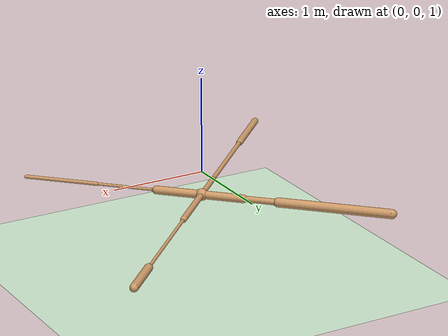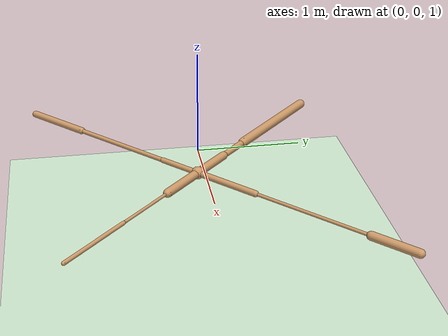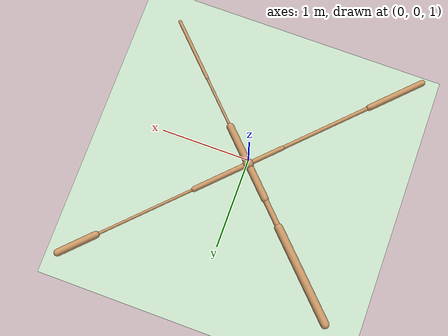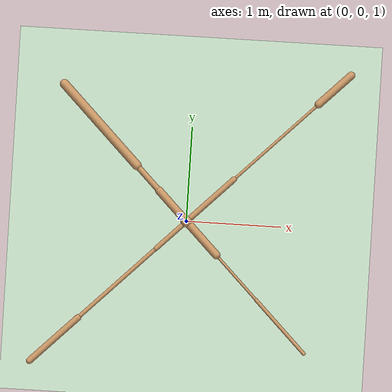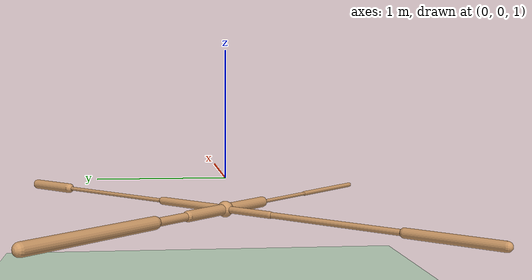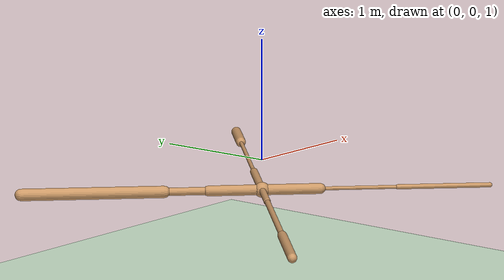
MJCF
<mujoco model="ant">
  <compiler angle="degree" coordinate="local" inertiafromgeom="true" />
  <option integrator="RK4" timestep="0.01" />
  <custom>
    <numeric data="0.0 0.0 0.55 1.0 0.0 0.0 0.0 0.0 1.0 0.0 -1.0 0.0 -1.0 0.0 1.0" name="init_qpos" />
  </custom>
  <default>
    <joint armature="1" damping="1" limited="true" />
    <geom conaffinity="0" condim="3" density="5.0" friction="1 0.5 0.5" margin="0.01" rgba="0.8 0.6 0.4 1" />
  </default>
  <asset>
    <texture builtin="gradient" height="100" rgb1="1 1 1" rgb2="0 0 0" type="skybox" width="100" />
    <texture builtin="flat" height="1278" mark="cross" markrgb="1 1 1" name="texgeom" random="0.01" rgb1="0.8 0.6 0.4" rgb2="0.8 0.6 0.4" type="cube" width="127" />
    <texture builtin="checker" height="100" name="texplane" rgb1="0 0 0" rgb2="0.8 0.8 0.8" type="2d" width="100" />
    <material name="MatPlane" reflectance="0.5" shininess="1" specular="1" texrepeat="60 60" texture="texplane" />
    <material name="geom" texture="texgeom" texuniform="true" />
  </asset>
  <worldbody>
    <light cutoff="100" diffuse="1 1 1" dir="-0 0 -1.3" directional="true" exponent="1" pos="0 0 1.3" specular=".1 .1 .1" />
    <geom conaffinity="1" condim="3" material="MatPlane" name="floor" pos="0 0 0" rgba="0.8 0.9 0.8 1" size="40 40 40" type="plane" />
    <body name="torso" pos="0 0 0.75">
      <camera name="track" mode="trackcom" pos="0 -11 5" xyaxes="1 0 0 0 0.5 1" />
      <geom name="torso_geom" pos="0 0 0" size="0.06372592598199844" type="sphere" />
      <joint armature="0" damping="0" limited="false" margin="0.01" name="root" pos="0 0 0" type="free" />
      <body name="front_left_leg" pos="0 0 0">
        <geom fromto="0 0 0 0.48008978366851807 0.48008978366851807 0" name="aux_1_geom" size="0.03230687230825424" type="capsule" />
        <body name="aux_1" pos="0.48008978366851807 0.48008978366851807 0">
          <joint axis="0 0 1" name="hip_1" pos="0.0 0.0 0.0" range="-30 30" type="hinge" />
          <geom fromto="0 0 0 0.8565163016319275 0.8565163016319275 0" name="left_leg_geom" size="0.016542401164770126" type="capsule" />
          <body name="left_leg_geom_aux" pos="0.8565163016319275 0.8565163016319275 0">
            <joint axis="-1 1 0" name="ankle_1" pos="0.0 0.0 0.0" range="30 70" type="hinge" />
            <geom fromto="0 0 0 0.3276321291923523 0.3276321291923523 0" name="left_ankle_geom" size="0.042995356023311615" type="capsule" />
          </body>
        </body>
      </body>
      <body name="front_right_leg" pos="0 0 0">
        <geom fromto="0 0 0 -0.311503529548645 0.311503529548645 0" name="aux_2_geom" size="0.04318014904856682" type="capsule" />
        <body name="aux_2" pos="-0.311503529548645 0.311503529548645 0">
          <joint axis="0 0 1" name="hip_2" pos="0.0 0.0 0.0" range="-30 30" type="hinge" />
          <geom fromto="0 0 0 -0.25501111149787903 0.25501111149787903 0" name="right_leg_geom" size="0.03249695897102356" type="capsule" />
          <body name="right_leg_geom_aux" pos="-0.25501111149787903 0.25501111149787903 0">
            <joint axis="1 1 0" name="ankle_2" pos="0.0 0.0 0.0" range="-70 -30" type="hinge" />
            <geom fromto="0 0 0 -0.8256981372833252 0.8256981372833252 0" name="right_ankle_geom" size="0.04960286244750023" type="capsule" />
          </body>
        </body>
      </body>
      <body name="back_leg" pos="0 0 0">
        <geom fromto="0 0 0 -0.31049156188964844 -0.31049156188964844 0" name="aux_3_geom" size="0.02740771323442459" type="capsule" />
        <body name="aux_3" pos="-0.31049156188964844 -0.31049156188964844 0">
          <joint axis="0 0 1" name="hip_3" pos="0.0 0.0 0.0" range="-30 30" type="hinge" />
          <geom fromto="0 0 0 -0.7866899967193604 -0.7866899967193604 0" name="back_leg_geom" size="0.02295326441526413" type="capsule" />
          <body name="back_leg_geom_aux" pos="-0.7866899967193604 -0.7866899967193604 0">
            <joint axis="-1 1 0" name="ankle_3" pos="0.0 0.0 0.0" range="-70 -30" type="hinge" />
            <geom fromto="0 0 0 -0.4903864860534668 -0.4903864860534668 0" name="third_ankle_geom" size="0.03631550818681717" type="capsule" />
          </body>
        </body>
      </body>
      <body name="right_back_leg" pos="0 0 0">
        <geom fromto="0 0 0 0.33993956446647644 -0.33993956446647644 0" name="aux_4_geom" size="0.043814267963171005" type="capsule" />
        <body name="aux_4" pos="0.33993956446647644 -0.33993956446647644 0">
          <joint axis="0 0 1" name="hip_4" pos="0.0 0.0 0.0" range="-30 30" type="hinge" />
          <geom fromto="0 0 0 0.45376649498939514 -0.45376649498939514 0" name="rightback_leg_geom" size="0.015051701106131077" type="capsule" />
          <body name="rightback_leg_geom_aux" pos="0.45376649498939514 -0.45376649498939514 0">
            <joint axis="1 1 0" name="ankle_4" pos="0.0 0.0 0.0" range="30 70" type="hinge" />
            <geom fromto="0 0 0 0.5444331169128418 -0.5444331169128418 0" name="fourth_ankle_geom" size="0.019853249192237854" type="capsule" />
          </body>
        </body>
      </body>
    </body>
  </worldbody>
  <actuator>
    <motor ctrllimited="true" ctrlrange="-1.0 1.0" joint="hip_4" gear="150" />
    <motor ctrllimited="true" ctrlrange="-1.0 1.0" joint="ankle_4" gear="150" />
    <motor ctrllimited="true" ctrlrange="-1.0 1.0" joint="hip_1" gear="150" />
    <motor ctrllimited="true" ctrlrange="-1.0 1.0" joint="ankle_1" gear="150" />
    <motor ctrllimited="true" ctrlrange="-1.0 1.0" joint="hip_2" gear="150" />
    <motor ctrllimited="true" ctrlrange="-1.0 1.0" joint="ankle_2" gear="150" />
    <motor ctrllimited="true" ctrlrange="-1.0 1.0" joint="hip_3" gear="150" />
    <motor ctrllimited="true" ctrlrange="-1.0 1.0" joint="ankle_3" gear="150" />
  </actuator>
</mujoco>
